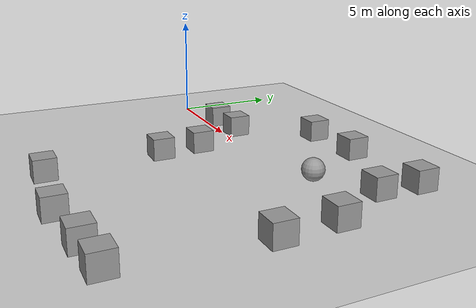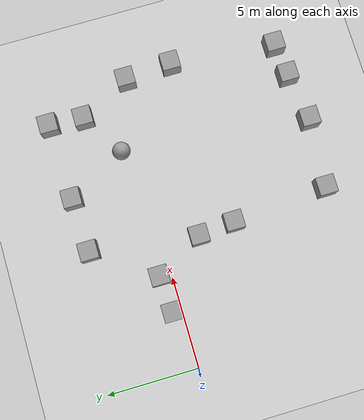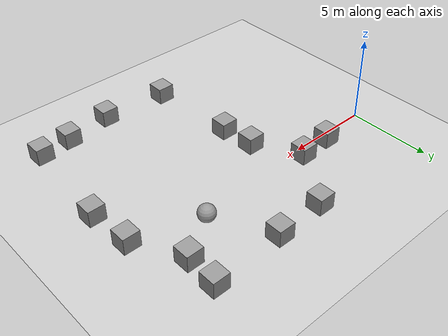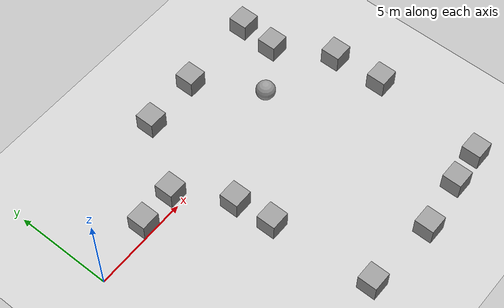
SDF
<sdf version="1.7">
 <world name="world_with_obstacles">
  <model name="ground_plane">
   <static>1</static>
   <link name="link">
    <collision name="collision">
     <geometry><plane><normal>0 0 1</normal><size>100 100</size></plane></geometry>
     <surface>
      <contact><collide_bitmask>65535</collide_bitmask></contact>
      <friction><ode><mu>100</mu><mu2>50</mu2></ode></friction>
     </surface>
    </collision>
    <visual name="visual">
     <cast_shadows>0</cast_shadows>
     <geometry><plane><normal>0 0 1</normal><size>100 100</size></plane></geometry>
     <material>
      <script><uri>file://media/materials/scripts/gazebo.material</uri><name>Gazebo/Grey</name></script>
     </material>
    </visual>
   </link>
  </model>
  <model name="unit_box">
   <pose>7.57895 3.89649 0.5 0 -0 0</pose>
   <link name="link">
    <inertial>
     <mass>1</mass>
     <inertia>
      <ixx>0.166667</ixx>
      <ixy>0</ixy>
      <ixz>0</ixz>
      <iyy>0.166667</iyy>
      <iyz>0</iyz>
      <izz>0.166667</izz>
     </inertia>
    </inertial>
    <collision name="collision"><geometry><box><size>1 1 1</size></box></geometry></collision>
    <visual name="visual">
     <geometry><box><size>1 1 1</size></box></geometry>
     <material>
      <script><name>Gazebo/Grey</name><uri>file://media/materials/scripts/gazebo.material</uri></script>
     </material>
    </visual>
   </link>
  </model>
  <model name="unit_box_0">
   <pose>10.591 4.02308 0.5 0 -0 0</pose>
   <link name="link">
    <inertial>
     <mass>1</mass>
     <inertia>
      <ixx>0.166667</ixx>
      <ixy>0</ixy>
      <ixz>0</ixz>
      <iyy>0.166667</iyy>
      <iyz>0</iyz>
      <izz>0.166667</izz>
     </inertia>
    </inertial>
    <collision name="collision"><geometry><box><size>1 1 1</size></box></geometry></collision>
    <visual name="visual">
     <geometry><box><size>1 1 1</size></box></geometry>
     <material>
      <script><name>Gazebo/Grey</name><uri>file://media/materials/scripts/gazebo.material</uri></script>
     </material>
    </visual>
   </link>
  </model>
  <model name="unit_box_1">
   <pose>14.7955 2.26608 0.5 0 -0 0</pose>
   <link name="link">
    <inertial>
     <mass>1</mass>
     <inertia>
      <ixx>0.166667</ixx>
      <ixy>0</ixy>
      <ixz>0</ixz>
      <iyy>0.166667</iyy>
      <iyz>0</iyz>
      <izz>0.166667</izz>
     </inertia>
    </inertial>
    <collision name="collision"><geometry><box><size>1 1 1</size></box></geometry></collision>
    <visual name="visual">
     <geometry><box><size>1 1 1</size></box></geometry>
     <material>
      <script><name>Gazebo/Grey</name><uri>file://media/materials/scripts/gazebo.material</uri></script>
     </material>
    </visual>
   </link>
  </model>
  <model name="unit_box_2">
   <pose>14.0425 -9.28171 0.5 0 -0 0</pose>
   <link name="link">
    <inertial>
     <mass>1</mass>
     <inertia>
      <ixx>0.166667</ixx>
      <ixy>0</ixy>
      <ixz>0</ixz>
      <iyy>0.166667</iyy>
      <iyz>0</iyz>
      <izz>0.166667</izz>
     </inertia>
    </inertial>
    <collision name="collision"><geometry><box><size>1 1 1</size></box></geometry></collision>
    <visual name="visual">
     <geometry><box><size>1 1 1</size></box></geometry>
     <material>
      <script><name>Gazebo/Grey</name><uri>file://media/materials/scripts/gazebo.material</uri></script>
     </material>
    </visual>
   </link>
  </model>
  <model name="unit_box_3">
   <pose>11.2814 -9.65732 0.5 0 -0 0</pose>
   <link name="link">
    <inertial>
     <mass>1</mass>
     <inertia>
      <ixx>0.166667</ixx>
      <ixy>0</ixy>
      <ixz>0</ixz>
      <iyy>0.166667</iyy>
      <iyz>0</iyz>
      <izz>0.166667</izz>
     </inertia>
    </inertial>
    <collision name="collision"><geometry><box><size>1 1 1</size></box></geometry></collision>
    <visual name="visual">
     <geometry><box><size>1 1 1</size></box></geometry>
     <material>
      <script><name>Gazebo/Grey</name><uri>file://media/materials/scripts/gazebo.material</uri></script>
     </material>
    </visual>
   </link>
  </model>
  <model name="unit_sphere">
   <pose>12.411 0.758094 0.5 0 -0 0</pose>
   <link name="link">
    <inertial>
     <mass>1</mass>
     <inertia><ixx>0.1</ixx><ixy>0</ixy><ixz>0</ixz><iyy>0.1</iyy><iyz>0</iyz><izz>0.1</izz></inertia>
    </inertial>
    <collision name="collision"><geometry><sphere><radius>0.5</radius></sphere></geometry></collision>
    <visual name="visual">
     <geometry><sphere><radius>0.5</radius></sphere></geometry>
     <material>
      <script><name>Gazebo/Grey</name><uri>file://media/materials/scripts/gazebo.material</uri></script>
     </material>
    </visual>
   </link>
  </model>
  <model name="unit_box_4">
   <pose>5.25717 0.634279 0.5 0 -0 0</pose>
   <link name="link">
    <inertial>
     <mass>1</mass>
     <inertia>
      <ixx>0.166667</ixx>
      <ixy>0</ixy>
      <ixz>0</ixz>
      <iyy>0.166667</iyy>
      <iyz>0</iyz>
      <izz>0.166667</izz>
     </inertia>
    </inertial>
    <collision name="collision"><geometry><box><size>1 1 1</size></box></geometry></collision>
    <visual name="visual">
     <geometry><box><size>1 1 1</size></box></geometry>
     <material>
      <script><name>Gazebo/Grey</name><uri>file://media/materials/scripts/gazebo.material</uri></script>
     </material>
    </visual>
   </link>
  </model>
  <model name="unit_box_5">
   <pose>3.24899 0.507689 0.5 0 -0 0</pose>
   <link name="link">
    <inertial>
     <mass>1</mass>
     <inertia>
      <ixx>0.166667</ixx>
      <ixy>0</ixy>
      <ixz>0</ixz>
      <iyy>0.166667</iyy>
      <iyz>0</iyz>
      <izz>0.166667</izz>
     </inertia>
    </inertial>
    <collision name="collision"><geometry><box><size>1 1 1</size></box></geometry></collision>
    <visual name="visual">
     <geometry><box><size>1 1 1</size></box></geometry>
     <material>
      <script><name>Gazebo/Grey</name><uri>file://media/materials/scripts/gazebo.material</uri></script>
     </material>
    </visual>
   </link>
  </model>
  <model name="unit_box_7">
   <pose>6.76325 -2.00053 0.5 0 -0 0</pose>
   <link name="link">
    <inertial>
     <mass>1</mass>
     <inertia>
      <ixx>0.166667</ixx>
      <ixy>0</ixy>
      <ixz>0</ixz>
      <iyy>0.166667</iyy>
      <iyz>0</iyz>
      <izz>0.166667</izz>
     </inertia>
    </inertial>
    <collision name="collision"><geometry><box><size>1 1 1</size></box></geometry></collision>
    <visual name="visual">
     <geometry><box><size>1 1 1</size></box></geometry>
     <material>
      <script><name>Gazebo/Grey</name><uri>file://media/materials/scripts/gazebo.material</uri></script>
     </material>
    </visual>
   </link>
  </model>
  <model name="unit_box_8">
   <pose>6.95149 -4.01071 0.5 0 -0 0</pose>
   <link name="link">
    <inertial>
     <mass>1</mass>
     <inertia>
      <ixx>0.166667</ixx>
      <ixy>0</ixy>
      <ixz>0</ixz>
      <iyy>0.166667</iyy>
      <iyz>0</iyz>
      <izz>0.166667</izz>
     </inertia>
    </inertial>
    <collision name="collision"><geometry><box><size>1 1 1</size></box></geometry></collision>
    <visual name="visual">
     <geometry><box><size>1 1 1</size></box></geometry>
     <material>
      <script><name>Gazebo/Grey</name><uri>file://media/materials/scripts/gazebo.material</uri></script>
     </material>
    </visual>
   </link>
  </model>
  <model name="unit_box_23">
   <pose>16.49 -3.19391 0.5 0 -0 0</pose>
   <link name="link">
    <inertial>
     <mass>1</mass>
     <inertia>
      <ixx>0.166667</ixx>
      <ixy>0</ixy>
      <ixz>0</ixz>
      <iyy>0.166667</iyy>
      <iyz>0</iyz>
      <izz>0.166667</izz>
     </inertia>
    </inertial>
    <collision name="collision"><geometry><box><size>1 1 1</size></box></geometry></collision>
    <visual name="visual">
     <geometry><box><size>1 1 1</size></box></geometry>
     <material>
      <script><name>Gazebo/Grey</name><uri>file://media/materials/scripts/gazebo.material</uri></script>
     </material>
    </visual>
   </link>
  </model>
  <model name="unit_box_24">
   <pose>16.3017 -0.559105 0.5 0 -0 0</pose>
   <link name="link">
    <inertial>
     <mass>1</mass>
     <inertia>
      <ixx>0.166667</ixx>
      <ixy>0</ixy>
      <ixz>0</ixz>
      <iyy>0.166667</iyy>
      <iyz>0</iyz>
      <izz>0.166667</izz>
     </inertia>
    </inertial>
    <collision name="collision"><geometry><box><size>1 1 1</size></box></geometry></collision>
    <visual name="visual">
     <geometry><box><size>1 1 1</size></box></geometry>
     <material>
      <script><name>Gazebo/Grey</name><uri>file://media/materials/scripts/gazebo.material</uri></script>
     </material>
    </visual>
   </link>
  </model>
  <model name="unit_box_25">
   <pose>14.9211 4.21109 0.5 0 -0 0</pose>
   <link name="link">
    <inertial>
     <mass>1</mass>
     <inertia>
      <ixx>0.166667</ixx>
      <ixy>0</ixy>
      <ixz>0</ixz>
      <iyy>0.166667</iyy>
      <iyz>0</iyz>
      <izz>0.166667</izz>
     </inertia>
    </inertial>
    <collision name="collision"><geometry><box><size>1 1 1</size></box></geometry></collision>
    <visual name="visual">
     <geometry><box><size>1 1 1</size></box></geometry>
     <material>
      <script><name>Gazebo/Grey</name><uri>file://media/materials/scripts/gazebo.material</uri></script>
     </material>
    </visual>
   </link>
  </model>
  <model name="unit_box_26">
   <pose>7.39065 -9.34411 0.5 0 -0 0</pose>
   <link name="link">
    <inertial>
     <mass>1</mass>
     <inertia>
      <ixx>0.166667</ixx>
      <ixy>0</ixy>
      <ixz>0</ixz>
      <iyy>0.166667</iyy>
      <iyz>0</iyz>
      <izz>0.166667</izz>
     </inertia>
    </inertial>
    <collision name="collision"><geometry><box><size>1 1 1</size></box></geometry></collision>
    <visual name="visual">
     <geometry><box><size>1 1 1</size></box></geometry>
     <material>
      <script><name>Gazebo/Grey</name><uri>file://media/materials/scripts/gazebo.material</uri></script>
     </material>
    </visual>
   </link>
  </model>
  <model name="unit_box_27">
   <pose>15.9252 -9.09231 0.5 0 -0 0</pose>
   <link name="link">
    <inertial>
     <mass>1</mass>
     <inertia>
      <ixx>0.166667</ixx>
      <ixy>0</ixy>
      <ixz>0</ixz>
      <iyy>0.166667</iyy>
      <iyz>0</iyz>
      <izz>0.166667</izz>
     </inertia>
    </inertial>
    <collision name="collision"><geometry><box><size>1 1 1</size></box></geometry></collision>
    <visual name="visual">
     <geometry><box><size>1 1 1</size></box></geometry>
     <material>
      <script><name>Gazebo/Grey</name><uri>file://media/materials/scripts/gazebo.material</uri></script>
     </material>
    </visual>
   </link>
  </model>
 </world>
</sdf>
